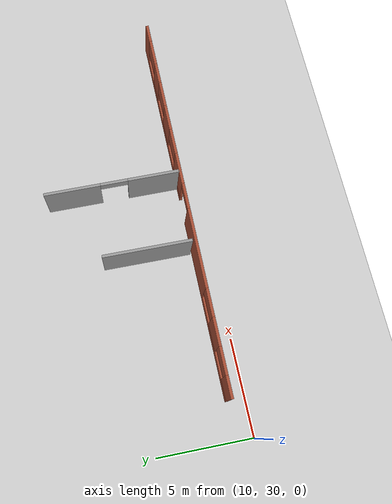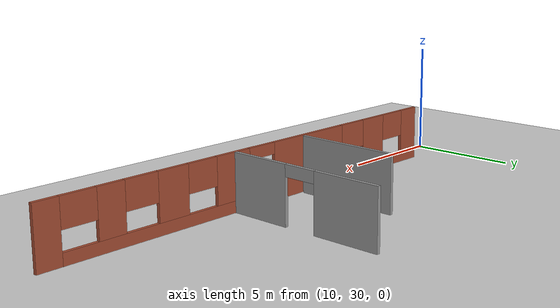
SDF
<sdf version="1.6">
 <world name="default">
  <model name="ground_plane">
   <static>1</static>
   <link name="link">
    <collision name="collision">
     <geometry><plane><normal>0 0 1</normal><size>100 100</size></plane></geometry>
     <surface><friction><ode><mu>100</mu><mu2>50</mu2></ode></friction></surface>
    </collision>
    <visual name="visual">
     <cast_shadows>0</cast_shadows>
     <geometry><plane><normal>0 0 1</normal><size>100 100</size></plane></geometry>
     <material>
      <script><uri>file://media/materials/scripts/gazebo.material</uri><name>Gazebo/Grey</name></script>
     </material>
    </visual>
   </link>
  </model>
  <model name="CVSSP">
   <pose>23.8714 24.094 0 0 -0 0</pose>
   <link name="Wall_27">
    <collision name="Wall_27_Collision">
     <geometry><box><size>4.69046 0.15 2.5</size></box></geometry>
     <pose>0 0 1.25 0 -0 0</pose>
    </collision>
    <visual name="Wall_27_Visual">
     <pose>0 0 1.25 0 -0 0</pose>
     <geometry><box><size>4.69046 0.15 2.5</size></box></geometry>
     <material>
      <script><uri>file://media/materials/scripts/gazebo.material</uri><name>Gazebo/Grey</name></script>
      <ambient>0.588235 0.588235 0.588235 1</ambient>
     </material>
    </visual>
    <pose>-3.88025 9.37755 0 0 0 -1.57353</pose>
   </link>
   <link name="Wall_29">
    <pose>-0.023055 10.5087 0 0 0 -1.5708</pose>
    <visual name="Wall_29_Visual_0">
     <pose>-2.1277 0 1.25 0 -0 0</pose>
     <geometry><box><size>2.99461 0.15 2.5</size></box></geometry>
     <material>
      <script><uri>file://media/materials/scripts/gazebo.material</uri><name>Gazebo/Grey</name></script>
      <ambient>0.588235 0.588235 0.588235 1</ambient>
     </material>
    </visual>
    <collision name="Wall_29_Collision_0">
     <geometry><box><size>2.99461 0.15 2.5</size></box></geometry>
     <pose>-2.1277 0 1.25 0 -0 0</pose>
    </collision>
    <visual name="Wall_29_Visual_1">
     <pose>2.22714 0 1.25 0 -0 0</pose>
     <geometry><box><size>2.79571 0.15 2.5</size></box></geometry>
     <material>
      <script><uri>file://media/materials/scripts/gazebo.material</uri><name>Gazebo/Grey</name></script>
      <ambient>0.588235 0.588235 0.588235 1</ambient>
     </material>
    </visual>
    <collision name="Wall_29_Collision_1">
     <geometry><box><size>2.79571 0.15 2.5</size></box></geometry>
     <pose>2.22714 0 1.25 0 -0 0</pose>
    </collision>
    <visual name="Wall_29_Visual_2">
     <pose>0.099447 0 2.25 0 -0 0</pose>
     <geometry><box><size>1.45968 0.15 0.5</size></box></geometry>
     <material>
      <script><uri>file://media/materials/scripts/gazebo.material</uri><name>Gazebo/Grey</name></script>
      <ambient>0.588235 0.588235 0.588235 1</ambient>
     </material>
    </visual>
    <collision name="Wall_29_Collision_2">
     <geometry><box><size>1.45968 0.15 0.5</size></box></geometry>
     <pose>0.099447 0 2.25 0 -0 0</pose>
    </collision>
   </link>
   <link name="Wall_46">
    <pose>-1.40579 6.86917 0 0 -0 3.14155</pose>
    <visual name="Wall_46_Visual_0">
     <pose>-9.95927 0 1.25 0 -0 0</pose>
     <geometry><box><size>1.03804 0.15 2.5</size></box></geometry>
     <material>
      <script><uri>file://media/materials/scripts/gazebo.material</uri><name>Gazebo/Bricks</name></script>
      <ambient>1 1 1 1</ambient>
     </material>
    </visual>
    <collision name="Wall_46_Collision_0">
     <geometry><box><size>1.03804 0.15 2.5</size></box></geometry>
     <pose>-9.95927 0 1.25 0 -0 0</pose>
    </collision>
    <visual name="Wall_46_Visual_1">
     <pose>2.91124 0 1.25 0 -0 0</pose>
     <geometry><box><size>4.28444 0.15 2.5</size></box></geometry>
     <material>
      <script><uri>file://media/materials/scripts/gazebo.material</uri><name>Gazebo/Bricks</name></script>
      <ambient>1 1 1 1</ambient>
     </material>
    </visual>
    <collision name="Wall_46_Collision_1">
     <geometry><box><size>4.28444 0.15 2.5</size></box></geometry>
     <pose>2.91124 0 1.25 0 -0 0</pose>
    </collision>
    <visual name="Wall_46_Visual_2">
     <pose>-5.03718 0 0.25 0 -0 0</pose>
     <geometry><box><size>8.80612 0.15 0.5</size></box></geometry>
     <material>
      <script><uri>file://media/materials/scripts/gazebo.material</uri><name>Gazebo/Bricks</name></script>
      <ambient>1 1 1 1</ambient>
     </material>
    </visual>
    <collision name="Wall_46_Collision_2">
     <geometry><box><size>8.80612 0.15 0.5</size></box></geometry>
     <pose>-5.03718 0 0.25 0 -0 0</pose>
    </collision>
    <visual name="Wall_46_Visual_3">
     <pose>7.76588 0 0.25 0 -0 0</pose>
     <geometry><box><size>5.42482 0.15 0.5</size></box></geometry>
     <material>
      <script><uri>file://media/materials/scripts/gazebo.material</uri><name>Gazebo/Bricks</name></script>
      <ambient>1 1 1 1</ambient>
     </material>
    </visual>
    <collision name="Wall_46_Collision_3">
     <geometry><box><size>5.42482 0.15 0.5</size></box></geometry>
     <pose>7.76588 0 0.25 0 -0 0</pose>
    </collision>
    <visual name="Wall_46_Visual_4">
     <pose>-7.35036 0 1.5 0 -0 0</pose>
     <geometry><box><size>1.1891 0.15 2</size></box></geometry>
     <material>
      <script><uri>file://media/materials/scripts/gazebo.material</uri><name>Gazebo/Bricks</name></script>
      <ambient>1 1 1 1</ambient>
     </material>
    </visual>
    <collision name="Wall_46_Collision_4">
     <geometry><box><size>1.1891 0.15 2</size></box></geometry>
     <pose>-7.35036 0 1.5 0 -0 0</pose>
    </collision>
    <visual name="Wall_46_Visual_5">
     <pose>-4.55193 0 1.5 0 -0 0</pose>
     <geometry><box><size>1.43988 0.15 2</size></box></geometry>
     <material>
      <script><uri>file://media/materials/scripts/gazebo.material</uri><name>Gazebo/Bricks</name></script>
      <ambient>1 1 1 1</ambient>
     </material>
    </visual>
    <collision name="Wall_46_Collision_5">
     <geometry><box><size>1.43988 0.15 2</size></box></geometry>
     <pose>-4.55193 0 1.5 0 -0 0</pose>
    </collision>
    <visual name="Wall_46_Visual_6">
     <pose>-1.51388 0 1.5 0 -0 0</pose>
     <geometry><box><size>1.75953 0.15 2</size></box></geometry>
     <material>
      <script><uri>file://media/materials/scripts/gazebo.material</uri><name>Gazebo/Bricks</name></script>
      <ambient>1 1 1 1</ambient>
     </material>
    </visual>
    <collision name="Wall_46_Collision_6">
     <geometry><box><size>1.75953 0.15 2</size></box></geometry>
     <pose>-1.51388 0 1.5 0 -0 0</pose>
    </collision>
    <visual name="Wall_46_Visual_7">
     <pose>-1.51388 0 1.5 0 -0 0</pose>
     <geometry><box><size>1.75953 0.15 2</size></box></geometry>
     <material>
      <script><uri>file://media/materials/scripts/gazebo.material</uri><name>Gazebo/Bricks</name></script>
      <ambient>1 1 1 1</ambient>
     </material>
    </visual>
    <collision name="Wall_46_Collision_7">
     <geometry><box><size>1.75953 0.15 2</size></box></geometry>
     <pose>-1.51388 0 1.5 0 -0 0</pose>
    </collision>
    <visual name="Wall_46_Visual_8">
     <pose>7.24439 0 1.5 0 -0 0</pose>
     <geometry><box><size>1.44818 0.15 2</size></box></geometry>
     <material>
      <script><uri>file://media/materials/scripts/gazebo.material</uri><name>Gazebo/Bricks</name></script>
      <ambient>1 1 1 1</ambient>
     </material>
    </visual>
    <collision name="Wall_46_Collision_8">
     <geometry><box><size>1.44818 0.15 2</size></box></geometry>
     <pose>7.24439 0 1.5 0 -0 0</pose>
    </collision>
    <visual name="Wall_46_Visual_9">
     <pose>9.92244 0 1.5 0 -0 0</pose>
     <geometry><box><size>1.1117 0.15 2</size></box></geometry>
     <material>
      <script><uri>file://media/materials/scripts/gazebo.material</uri><name>Gazebo/Bricks</name></script>
      <ambient>1 1 1 1</ambient>
     </material>
    </visual>
    <collision name="Wall_46_Collision_9">
     <geometry><box><size>1.1117 0.15 2</size></box></geometry>
     <pose>9.92244 0 1.5 0 -0 0</pose>
    </collision>
    <visual name="Wall_46_Visual_10">
     <pose>-8.69258 0 1.9 0 -0 0</pose>
     <geometry><box><size>1.49533 0.15 1.2</size></box></geometry>
     <material>
      <script><uri>file://media/materials/scripts/gazebo.material</uri><name>Gazebo/Bricks</name></script>
      <ambient>1 1 1 1</ambient>
     </material>
    </visual>
    <collision name="Wall_46_Collision_10">
     <geometry><box><size>1.49533 0.15 1.2</size></box></geometry>
     <pose>-8.69258 0 1.9 0 -0 0</pose>
    </collision>
    <visual name="Wall_46_Visual_11">
     <pose>5.78688 0 1.9 0 -0 0</pose>
     <geometry><box><size>1.46684 0.15 1.2</size></box></geometry>
     <material>
      <script><uri>file://media/materials/scripts/gazebo.material</uri><name>Gazebo/Bricks</name></script>
      <ambient>1 1 1 1</ambient>
     </material>
    </visual>
    <collision name="Wall_46_Collision_11">
     <geometry><box><size>1.46684 0.15 1.2</size></box></geometry>
     <pose>5.78688 0 1.9 0 -0 0</pose>
    </collision>
    <visual name="Wall_46_Visual_12">
     <pose>-6.01384 0 1.9 0 -0 0</pose>
     <geometry><box><size>1.48394 0.15 1.2</size></box></geometry>
     <material>
      <script><uri>file://media/materials/scripts/gazebo.material</uri><name>Gazebo/Bricks</name></script>
      <ambient>1 1 1 1</ambient>
     </material>
    </visual>
    <collision name="Wall_46_Collision_12">
     <geometry><box><size>1.48394 0.15 1.2</size></box></geometry>
     <pose>-6.01384 0 1.9 0 -0 0</pose>
    </collision>
    <visual name="Wall_46_Visual_13">
     <pose>-3.11282 0 1.9 0 -0 0</pose>
     <geometry><box><size>1.43834 0.15 1.2</size></box></geometry>
     <material>
      <script><uri>file://media/materials/scripts/gazebo.material</uri><name>Gazebo/Bricks</name></script>
      <ambient>1 1 1 1</ambient>
     </material>
    </visual>
    <collision name="Wall_46_Collision_13">
     <geometry><box><size>1.43834 0.15 1.2</size></box></geometry>
     <pose>-3.11282 0 1.9 0 -0 0</pose>
    </collision>
    <visual name="Wall_46_Visual_14">
     <pose>8.66753 0 1.9 0 -0 0</pose>
     <geometry><box><size>1.39811 0.15 1.2</size></box></geometry>
     <material>
      <script><uri>file://media/materials/scripts/gazebo.material</uri><name>Gazebo/Bricks</name></script>
      <ambient>1 1 1 1</ambient>
     </material>
    </visual>
    <collision name="Wall_46_Collision_14">
     <geometry><box><size>1.39811 0.15 1.2</size></box></geometry>
     <pose>8.66753 0 1.9 0 -0 0</pose>
    </collision>
    <visual name="Wall_46_Visual_15">
     <pose>0.067453 0 2.25 0 -0 0</pose>
     <geometry><box><size>1.40314 0.15 0.5</size></box></geometry>
     <material>
      <script><uri>file://media/materials/scripts/gazebo.material</uri><name>Gazebo/Bricks</name></script>
      <ambient>1 1 1 1</ambient>
     </material>
    </visual>
    <collision name="Wall_46_Collision_15">
     <geometry><box><size>1.40314 0.15 0.5</size></box></geometry>
     <pose>0.067453 0 2.25 0 -0 0</pose>
    </collision>
    <visual name="Wall_46_Visual_16">
     <pose>0.067453 0 2.25 0 -0 0</pose>
     <geometry><box><size>1.40314 0.15 0.5</size></box></geometry>
     <material>
      <script><uri>file://media/materials/scripts/gazebo.material</uri><name>Gazebo/Bricks</name></script>
      <ambient>1 1 1 1</ambient>
     </material>
    </visual>
    <collision name="Wall_46_Collision_16">
     <geometry><box><size>1.40314 0.15 0.5</size></box></geometry>
     <pose>0.067453 0 2.25 0 -0 0</pose>
    </collision>
   </link>
   <static>1</static>
  </model>
 </world>
</sdf>
